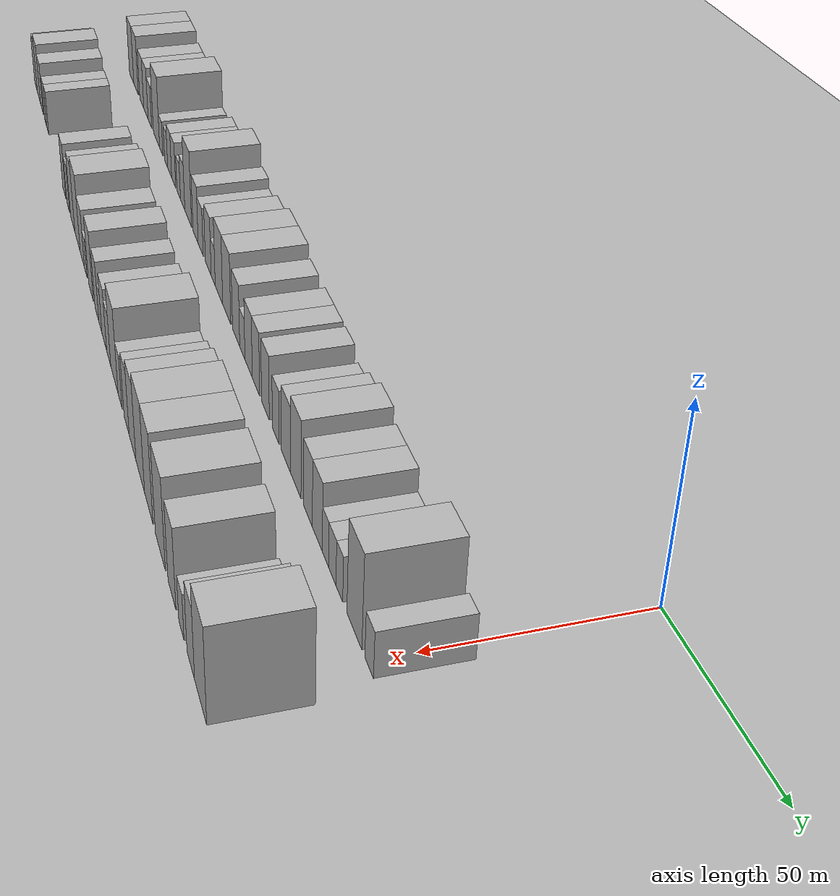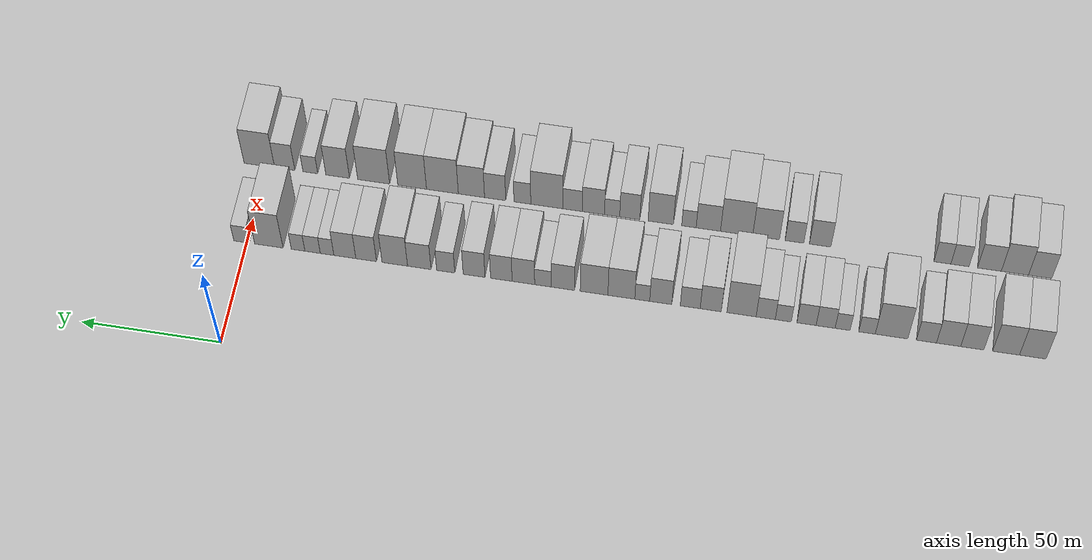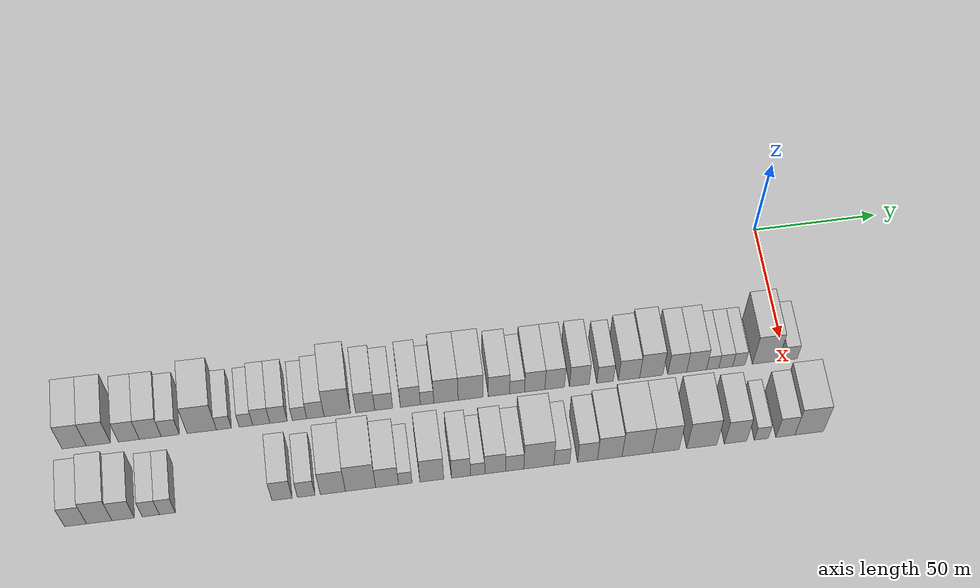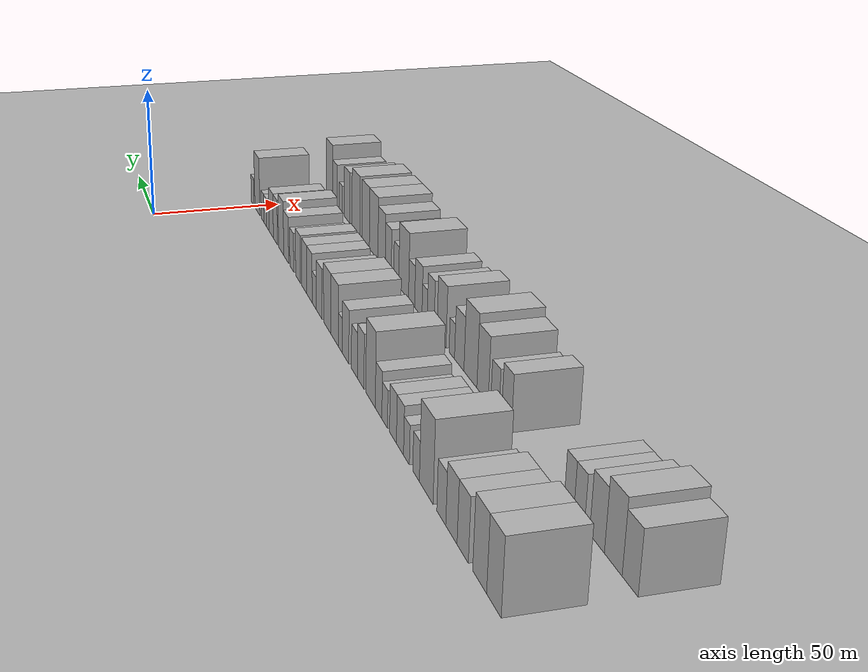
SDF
<sdf version="1.6">
 <world name="default">
  <include><name>ground_plane_1</name><uri>model://HANNAS_ground_plane</uri></include>
  <include>
   <name>ground_plane_2</name>
   <uri>model://HANNAS_ground_plane</uri>
   <pose>100 0 0  0 0 0</pose>
  </include>
  <model name="building_1">
   <static>1</static>
   <pose>50.0000 -279.3835 0 0.000000 0.000000 0.000000</pose>
   <link name="link">
    <pose>0 0 10.50 0 0 0</pose>
    <collision name="collision"><geometry><box><size>20.0000 9.2331 21.0000</size></box></geometry></collision>
    <visual name="visual">
     <cast_shadows>0</cast_shadows>
     <geometry><box><size>20.0000 9.2331 21.0000</size></box></geometry>
     <material>
      <script>
       <uri>model://HANNAS_wall/materials/scripts</uri>
       <uri>model://HANNAS_wall/materials/textures</uri>
       <name>vrc/HANNAS_wall</name>
      </script>
     </material>
    </visual>
   </link>
  </model>
  <model name="building_2">
   <static>1</static>
   <pose>50.0000 -270.1055 0 0.000000 0.000000 0.000000</pose>
   <link name="link">
    <pose>0 0 10.50 0 0 0</pose>
    <collision name="collision"><geometry><box><size>20.0000 9.3228 21.0000</size></box></geometry></collision>
    <visual name="visual">
     <cast_shadows>0</cast_shadows>
     <geometry><box><size>20.0000 9.3228 21.0000</size></box></geometry>
     <material>
      <script>
       <uri>model://HANNAS_wall/materials/scripts</uri>
       <uri>model://HANNAS_wall/materials/textures</uri>
       <name>vrc/HANNAS_wall</name>
      </script>
     </material>
    </visual>
   </link>
  </model>
  <model name="building_3">
   <static>1</static>
   <pose>50.0000 -258.4079 0 0.000000 0.000000 0.000000</pose>
   <link name="link">
    <pose>0 0 9.00 0 0 0</pose>
    <collision name="collision"><geometry><box><size>20.0000 8.0726 18.0000</size></box></geometry></collision>
    <visual name="visual">
     <cast_shadows>0</cast_shadows>
     <geometry><box><size>20.0000 8.0726 18.0000</size></box></geometry>
     <material>
      <script>
       <uri>model://HANNAS_wall/materials/scripts</uri>
       <uri>model://HANNAS_wall/materials/textures</uri>
       <name>vrc/HANNAS_wall</name>
      </script>
     </material>
    </visual>
   </link>
  </model>
  <model name="building_4">
   <static>1</static>
   <pose>50.0000 -250.1520 0 0.000000 0.000000 0.000000</pose>
   <link name="link">
    <pose>0 0 9.00 0 0 0</pose>
    <collision name="collision"><geometry><box><size>20.0000 8.4391 18.0000</size></box></geometry></collision>
    <visual name="visual">
     <cast_shadows>0</cast_shadows>
     <geometry><box><size>20.0000 8.4391 18.0000</size></box></geometry>
     <material>
      <script>
       <uri>model://HANNAS_wall/materials/scripts</uri>
       <uri>model://HANNAS_wall/materials/textures</uri>
       <name>vrc/HANNAS_wall</name>
      </script>
     </material>
    </visual>
   </link>
  </model>
  <model name="building_5">
   <static>1</static>
   <pose>50.0000 -242.4353 0 0.000000 0.000000 0.000000</pose>
   <link name="link">
    <pose>0 0 7.50 0 0 0</pose>
    <collision name="collision"><geometry><box><size>20.0000 6.9945 15.0000</size></box></geometry></collision>
    <visual name="visual">
     <cast_shadows>0</cast_shadows>
     <geometry><box><size>20.0000 6.9945 15.0000</size></box></geometry>
     <material>
      <script>
       <uri>model://HANNAS_wall/materials/scripts</uri>
       <uri>model://HANNAS_wall/materials/textures</uri>
       <name>vrc/HANNAS_wall</name>
      </script>
     </material>
    </visual>
   </link>
  </model>
  <model name="building_6">
   <static>1</static>
   <pose>50.0000 -230.2400 0 0.000000 0.000000 0.000000</pose>
   <link name="link">
    <pose>0 0 12.00 0 0 0</pose>
    <collision name="collision"><geometry><box><size>20.0000 11.3961 24.0000</size></box></geometry></collision>
    <visual name="visual">
     <cast_shadows>0</cast_shadows>
     <geometry><box><size>20.0000 11.3961 24.0000</size></box></geometry>
     <material>
      <script>
       <uri>model://HANNAS_wall/materials/scripts</uri>
       <uri>model://HANNAS_wall/materials/textures</uri>
       <name>vrc/HANNAS_wall</name>
      </script>
     </material>
    </visual>
   </link>
  </model>
  <model name="building_7">
   <static>1</static>
   <pose>50.0000 -221.6460 0 0.000000 0.000000 0.000000</pose>
   <link name="link">
    <pose>0 0 6.00 0 0 0</pose>
    <collision name="collision"><geometry><box><size>20.0000 5.7920 12.0000</size></box></geometry></collision>
    <visual name="visual">
     <cast_shadows>0</cast_shadows>
     <geometry><box><size>20.0000 5.7920 12.0000</size></box></geometry>
     <material>
      <script>
       <uri>model://HANNAS_wall/materials/scripts</uri>
       <uri>model://HANNAS_wall/materials/textures</uri>
       <name>vrc/HANNAS_wall</name>
      </script>
     </material>
    </visual>
   </link>
  </model>
  <model name="building_8">
   <static>1</static>
   <pose>50.0000 -213.1121 0 0.000000 0.000000 0.000000</pose>
   <link name="link">
    <pose>0 0 6.00 0 0 0</pose>
    <collision name="collision"><geometry><box><size>20.0000 5.2758 12.0000</size></box></geometry></collision>
    <visual name="visual">
     <cast_shadows>0</cast_shadows>
     <geometry><box><size>20.0000 5.2758 12.0000</size></box></geometry>
     <material>
      <script>
       <uri>model://HANNAS_wall/materials/scripts</uri>
       <uri>model://HANNAS_wall/materials/textures</uri>
       <name>vrc/HANNAS_wall</name>
      </script>
     </material>
    </visual>
   </link>
  </model>
  <model name="building_9">
   <static>1</static>
   <pose>50.0000 -207.1385 0 0.000000 0.000000 0.000000</pose>
   <link name="link">
    <pose>0 0 7.50 0 0 0</pose>
    <collision name="collision"><geometry><box><size>20.0000 6.6714 15.0000</size></box></geometry></collision>
    <visual name="visual">
     <cast_shadows>0</cast_shadows>
     <geometry><box><size>20.0000 6.6714 15.0000</size></box></geometry>
     <material>
      <script>
       <uri>model://HANNAS_wall/materials/scripts</uri>
       <uri>model://HANNAS_wall/materials/textures</uri>
       <name>vrc/HANNAS_wall</name>
      </script>
     </material>
    </visual>
   </link>
  </model>
  <model name="building_10">
   <static>1</static>
   <pose>50.0000 -200.4387 0 0.000000 0.000000 0.000000</pose>
   <link name="link">
    <pose>0 0 7.50 0 0 0</pose>
    <collision name="collision"><geometry><box><size>20.0000 6.7280 15.0000</size></box></geometry></collision>
    <visual name="visual">
     <cast_shadows>0</cast_shadows>
     <geometry><box><size>20.0000 6.7280 15.0000</size></box></geometry>
     <material>
      <script>
       <uri>model://HANNAS_wall/materials/scripts</uri>
       <uri>model://HANNAS_wall/materials/textures</uri>
       <name>vrc/HANNAS_wall</name>
      </script>
     </material>
    </visual>
   </link>
  </model>
  <model name="building_11">
   <static>1</static>
   <pose>50.0000 -192.2486 0 0.000000 0.000000 0.000000</pose>
   <link name="link">
    <pose>0 0 6.00 0 0 0</pose>
    <collision name="collision"><geometry><box><size>20.0000 5.6523 12.0000</size></box></geometry></collision>
    <visual name="visual">
     <cast_shadows>0</cast_shadows>
     <geometry><box><size>20.0000 5.6523 12.0000</size></box></geometry>
     <material>
      <script>
       <uri>model://HANNAS_wall/materials/scripts</uri>
       <uri>model://HANNAS_wall/materials/textures</uri>
       <name>vrc/HANNAS_wall</name>
      </script>
     </material>
    </visual>
   </link>
  </model>
  <model name="building_12">
   <static>1</static>
   <pose>50.0000 -186.0537 0 0.000000 0.000000 0.000000</pose>
   <link name="link">
    <pose>0 0 7.50 0 0 0</pose>
    <collision name="collision"><geometry><box><size>20.0000 6.7374 15.0000</size></box></geometry></collision>
    <visual name="visual">
     <cast_shadows>0</cast_shadows>
     <geometry><box><size>20.0000 6.7374 15.0000</size></box></geometry>
     <material>
      <script>
       <uri>model://HANNAS_wall/materials/scripts</uri>
       <uri>model://HANNAS_wall/materials/textures</uri>
       <name>vrc/HANNAS_wall</name>
      </script>
     </material>
    </visual>
   </link>
  </model>
  <model name="building_13">
   <static>1</static>
   <pose>50.0000 -177.5244 0 0.000000 0.000000 0.000000</pose>
   <link name="link">
    <pose>0 0 12.00 0 0 0</pose>
    <collision name="collision"><geometry><box><size>20.0000 10.3212 24.0000</size></box></geometry></collision>
    <visual name="visual">
     <cast_shadows>0</cast_shadows>
     <geometry><box><size>20.0000 10.3212 24.0000</size></box></geometry>
     <material>
      <script>
       <uri>model://HANNAS_wall/materials/scripts</uri>
       <uri>model://HANNAS_wall/materials/textures</uri>
       <name>vrc/HANNAS_wall</name>
      </script>
     </material>
    </visual>
   </link>
  </model>
  <model name="building_14">
   <static>1</static>
   <pose>50.0000 -166.6423 0 0.000000 0.000000 0.000000</pose>
   <link name="link">
    <pose>0 0 9.00 0 0 0</pose>
    <collision name="collision"><geometry><box><size>20.0000 7.4430 18.0000</size></box></geometry></collision>
    <visual name="visual">
     <cast_shadows>0</cast_shadows>
     <geometry><box><size>20.0000 7.4430 18.0000</size></box></geometry>
     <material>
      <script>
       <uri>model://HANNAS_wall/materials/scripts</uri>
       <uri>model://HANNAS_wall/materials/textures</uri>
       <name>vrc/HANNAS_wall</name>
      </script>
     </material>
    </visual>
   </link>
  </model>
  <model name="building_15">
   <static>1</static>
   <pose>50.0000 -159.3903 0 0.000000 0.000000 0.000000</pose>
   <link name="link">
    <pose>0 0 7.50 0 0 0</pose>
    <collision name="collision"><geometry><box><size>20.0000 7.0609 15.0000</size></box></geometry></collision>
    <visual name="visual">
     <cast_shadows>0</cast_shadows>
     <geometry><box><size>20.0000 7.0609 15.0000</size></box></geometry>
     <material>
      <script>
       <uri>model://HANNAS_wall/materials/scripts</uri>
       <uri>model://HANNAS_wall/materials/textures</uri>
       <name>vrc/HANNAS_wall</name>
      </script>
     </material>
    </visual>
   </link>
  </model>
  <model name="building_16">
   <static>1</static>
   <pose>50.0000 -148.9414 0 0.000000 0.000000 0.000000</pose>
   <link name="link">
    <pose>0 0 9.00 0 0 0</pose>
    <collision name="collision"><geometry><box><size>20.0000 7.8368 18.0000</size></box></geometry></collision>
    <visual name="visual">
     <cast_shadows>0</cast_shadows>
     <geometry><box><size>20.0000 7.8368 18.0000</size></box></geometry>
     <material>
      <script>
       <uri>model://HANNAS_wall/materials/scripts</uri>
       <uri>model://HANNAS_wall/materials/textures</uri>
       <name>vrc/HANNAS_wall</name>
      </script>
     </material>
    </visual>
   </link>
  </model>
  <model name="building_17">
   <static>1</static>
   <pose>50.0000 -142.3813 0 0.000000 0.000000 0.000000</pose>
   <link name="link">
    <pose>0 0 6.00 0 0 0</pose>
    <collision name="collision"><geometry><box><size>20.0000 5.2835 12.0000</size></box></geometry></collision>
    <visual name="visual">
     <cast_shadows>0</cast_shadows>
     <geometry><box><size>20.0000 5.2835 12.0000</size></box></geometry>
     <material>
      <script>
       <uri>model://HANNAS_wall/materials/scripts</uri>
       <uri>model://HANNAS_wall/materials/textures</uri>
       <name>vrc/HANNAS_wall</name>
      </script>
     </material>
    </visual>
   </link>
  </model>
  <model name="building_18">
   <static>1</static>
   <pose>50.0000 -134.9490 0 0.000000 0.000000 0.000000</pose>
   <link name="link">
    <pose>0 0 10.50 0 0 0</pose>
    <collision name="collision"><geometry><box><size>20.0000 9.5811 21.0000</size></box></geometry></collision>
    <visual name="visual">
     <cast_shadows>0</cast_shadows>
     <geometry><box><size>20.0000 9.5811 21.0000</size></box></geometry>
     <material>
      <script>
       <uri>model://HANNAS_wall/materials/scripts</uri>
       <uri>model://HANNAS_wall/materials/textures</uri>
       <name>vrc/HANNAS_wall</name>
      </script>
     </material>
    </visual>
   </link>
  </model>
  <model name="building_19">
   <static>1</static>
   <pose>50.0000 -125.2117 0 0.000000 0.000000 0.000000</pose>
   <link name="link">
    <pose>0 0 10.50 0 0 0</pose>
    <collision name="collision"><geometry><box><size>20.0000 9.8934 21.0000</size></box></geometry></collision>
    <visual name="visual">
     <cast_shadows>0</cast_shadows>
     <geometry><box><size>20.0000 9.8934 21.0000</size></box></geometry>
     <material>
      <script>
       <uri>model://HANNAS_wall/materials/scripts</uri>
       <uri>model://HANNAS_wall/materials/textures</uri>
       <name>vrc/HANNAS_wall</name>
      </script>
     </material>
    </visual>
   </link>
  </model>
  <model name="building_20">
   <static>1</static>
   <pose>50.0000 -114.0749 0 0.000000 0.000000 0.000000</pose>
   <link name="link">
    <pose>0 0 9.00 0 0 0</pose>
    <collision name="collision"><geometry><box><size>20.0000 8.3802 18.0000</size></box></geometry></collision>
    <visual name="visual">
     <cast_shadows>0</cast_shadows>
     <geometry><box><size>20.0000 8.3802 18.0000</size></box></geometry>
     <material>
      <script>
       <uri>model://HANNAS_wall/materials/scripts</uri>
       <uri>model://HANNAS_wall/materials/textures</uri>
       <name>vrc/HANNAS_wall</name>
      </script>
     </material>
    </visual>
   </link>
  </model>
  <model name="building_21">
   <static>1</static>
   <pose>50.0000 -106.9440 0 0.000000 0.000000 0.000000</pose>
   <link name="link">
    <pose>0 0 6.00 0 0 0</pose>
    <collision name="collision"><geometry><box><size>20.0000 5.8816 12.0000</size></box></geometry></collision>
    <visual name="visual">
     <cast_shadows>0</cast_shadows>
     <geometry><box><size>20.0000 5.8816 12.0000</size></box></geometry>
     <material>
      <script>
       <uri>model://HANNAS_wall/materials/scripts</uri>
       <uri>model://HANNAS_wall/materials/textures</uri>
       <name>vrc/HANNAS_wall</name>
      </script>
     </material>
    </visual>
   </link>
  </model>
  <model name="building_22">
   <static>1</static>
   <pose>50.0000 -99.9603 0 0.000000 0.000000 0.000000</pose>
   <link name="link">
    <pose>0 0 9.00 0 0 0</pose>
    <collision name="collision"><geometry><box><size>20.0000 8.0857 18.0000</size></box></geometry></collision>
    <visual name="visual">
     <cast_shadows>0</cast_shadows>
     <geometry><box><size>20.0000 8.0857 18.0000</size></box></geometry>
     <material>
      <script>
       <uri>model://HANNAS_wall/materials/scripts</uri>
       <uri>model://HANNAS_wall/materials/textures</uri>
       <name>vrc/HANNAS_wall</name>
      </script>
     </material>
    </visual>
   </link>
  </model>
  <model name="building_23">
   <static>1</static>
   <pose>50.0000 -92.0587 0 0.000000 0.000000 0.000000</pose>
   <link name="link">
    <pose>0 0 9.00 0 0 0</pose>
    <collision name="collision"><geometry><box><size>20.0000 7.7175 18.0000</size></box></geometry></collision>
    <visual name="visual">
     <cast_shadows>0</cast_shadows>
     <geometry><box><size>20.0000 7.7175 18.0000</size></box></geometry>
     <material>
      <script>
       <uri>model://HANNAS_wall/materials/scripts</uri>
       <uri>model://HANNAS_wall/materials/textures</uri>
       <name>vrc/HANNAS_wall</name>
      </script>
     </material>
    </visual>
   </link>
  </model>
  <model name="building_24">
   <static>1</static>
   <pose>50.0000 -82.2787 0 0.000000 0.000000 0.000000</pose>
   <link name="link">
    <pose>0 0 9.00 0 0 0</pose>
    <collision name="collision"><geometry><box><size>20.0000 7.8427 18.0000</size></box></geometry></collision>
    <visual name="visual">
     <cast_shadows>0</cast_shadows>
     <geometry><box><size>20.0000 7.8427 18.0000</size></box></geometry>
     <material>
      <script>
       <uri>model://HANNAS_wall/materials/scripts</uri>
       <uri>model://HANNAS_wall/materials/textures</uri>
       <name>vrc/HANNAS_wall</name>
      </script>
     </material>
    </visual>
   </link>
  </model>
  <model name="building_25">
   <static>1</static>
   <pose>50.0000 -72.0794 0 0.000000 0.000000 0.000000</pose>
   <link name="link">
    <pose>0 0 7.50 0 0 0</pose>
    <collision name="collision"><geometry><box><size>20.0000 6.5558 15.0000</size></box></geometry></collision>
    <visual name="visual">
     <cast_shadows>0</cast_shadows>
     <geometry><box><size>20.0000 6.5558 15.0000</size></box></geometry>
     <material>
      <script>
       <uri>model://HANNAS_wall/materials/scripts</uri>
       <uri>model://HANNAS_wall/materials/textures</uri>
       <name>vrc/HANNAS_wall</name>
      </script>
     </material>
    </visual>
   </link>
  </model>
  <model name="building_26">
   <static>1</static>
   <pose>50.0000 -62.5581 0 0.000000 0.000000 0.000000</pose>
   <link name="link">
    <pose>0 0 9.00 0 0 0</pose>
    <collision name="collision"><geometry><box><size>20.0000 8.4868 18.0000</size></box></geometry></collision>
    <visual name="visual">
     <cast_shadows>0</cast_shadows>
     <geometry><box><size>20.0000 8.4868 18.0000</size></box></geometry>
     <material>
      <script>
       <uri>model://HANNAS_wall/materials/scripts</uri>
       <uri>model://HANNAS_wall/materials/textures</uri>
       <name>vrc/HANNAS_wall</name>
      </script>
     </material>
    </visual>
   </link>
  </model>
  <model name="building_27">
   <static>1</static>
   <pose>50.0000 -53.7057 0 0.000000 0.000000 0.000000</pose>
   <link name="link">
    <pose>0 0 10.50 0 0 0</pose>
    <collision name="collision"><geometry><box><size>20.0000 9.2180 21.0000</size></box></geometry></collision>
    <visual name="visual">
     <cast_shadows>0</cast_shadows>
     <geometry><box><size>20.0000 9.2180 21.0000</size></box></geometry>
     <material>
      <script>
       <uri>model://HANNAS_wall/materials/scripts</uri>
       <uri>model://HANNAS_wall/materials/textures</uri>
       <name>vrc/HANNAS_wall</name>
      </script>
     </material>
    </visual>
   </link>
  </model>
  <model name="building_28">
   <static>1</static>
   <pose>50.0000 -43.3531 0 0.000000 0.000000 0.000000</pose>
   <link name="link">
    <pose>0 0 9.00 0 0 0</pose>
    <collision name="collision"><geometry><box><size>20.0000 7.4873 18.0000</size></box></geometry></collision>
    <visual name="visual">
     <cast_shadows>0</cast_shadows>
     <geometry><box><size>20.0000 7.4873 18.0000</size></box></geometry>
     <material>
      <script>
       <uri>model://HANNAS_wall/materials/scripts</uri>
       <uri>model://HANNAS_wall/materials/textures</uri>
       <name>vrc/HANNAS_wall</name>
      </script>
     </material>
    </visual>
   </link>
  </model>
  <model name="building_29">
   <static>1</static>
   <pose>50.0000 -35.6290 0 0.000000 0.000000 0.000000</pose>
   <link name="link">
    <pose>0 0 9.00 0 0 0</pose>
    <collision name="collision"><geometry><box><size>20.0000 7.9609 18.0000</size></box></geometry></collision>
    <visual name="visual">
     <cast_shadows>0</cast_shadows>
     <geometry><box><size>20.0000 7.9609 18.0000</size></box></geometry>
     <material>
      <script>
       <uri>model://HANNAS_wall/materials/scripts</uri>
       <uri>model://HANNAS_wall/materials/textures</uri>
       <name>vrc/HANNAS_wall</name>
      </script>
     </material>
    </visual>
   </link>
  </model>
  <model name="building_30">
   <static>1</static>
   <pose>50.0000 -29.1863 0 0.000000 0.000000 0.000000</pose>
   <link name="link">
    <pose>0 0 6.00 0 0 0</pose>
    <collision name="collision"><geometry><box><size>20.0000 4.9245 12.0000</size></box></geometry></collision>
    <visual name="visual">
     <cast_shadows>0</cast_shadows>
     <geometry><box><size>20.0000 4.9245 12.0000</size></box></geometry>
     <material>
      <script>
       <uri>model://HANNAS_wall/materials/scripts</uri>
       <uri>model://HANNAS_wall/materials/textures</uri>
       <name>vrc/HANNAS_wall</name>
      </script>
     </material>
    </visual>
   </link>
  </model>
  <model name="building_31">
   <static>1</static>
   <pose>50.0000 -23.9347 0 0.000000 0.000000 0.000000</pose>
   <link name="link">
    <pose>0 0 6.00 0 0 0</pose>
    <collision name="collision"><geometry><box><size>20.0000 5.5786 12.0000</size></box></geometry></collision>
    <visual name="visual">
     <cast_shadows>0</cast_shadows>
     <geometry><box><size>20.0000 5.5786 12.0000</size></box></geometry>
     <material>
      <script>
       <uri>model://HANNAS_wall/materials/scripts</uri>
       <uri>model://HANNAS_wall/materials/textures</uri>
       <name>vrc/HANNAS_wall</name>
      </script>
     </material>
    </visual>
   </link>
  </model>
  <model name="building_32">
   <static>1</static>
   <pose>50.0000 -18.6624 0 0.000000 0.000000 0.000000</pose>
   <link name="link">
    <pose>0 0 6.00 0 0 0</pose>
    <collision name="collision"><geometry><box><size>20.0000 4.9661 12.0000</size></box></geometry></collision>
    <visual name="visual">
     <cast_shadows>0</cast_shadows>
     <geometry><box><size>20.0000 4.9661 12.0000</size></box></geometry>
     <material>
      <script>
       <uri>model://HANNAS_wall/materials/scripts</uri>
       <uri>model://HANNAS_wall/materials/textures</uri>
       <name>vrc/HANNAS_wall</name>
      </script>
     </material>
    </visual>
   </link>
  </model>
  <model name="building_33">
   <static>1</static>
   <pose>50.0000 -8.0052 0 0.000000 0.000000 0.000000</pose>
   <link name="link">
    <pose>0 0 12.00 0 0 0</pose>
    <collision name="collision"><geometry><box><size>20.0000 10.3484 24.0000</size></box></geometry></collision>
    <visual name="visual">
     <cast_shadows>0</cast_shadows>
     <geometry><box><size>20.0000 10.3484 24.0000</size></box></geometry>
     <material>
      <script>
       <uri>model://HANNAS_wall/materials/scripts</uri>
       <uri>model://HANNAS_wall/materials/textures</uri>
       <name>vrc/HANNAS_wall</name>
      </script>
     </material>
    </visual>
   </link>
  </model>
  <model name="building_34">
   <static>1</static>
   <pose>50.0000 1.9745 0 0.000000 0.000000 0.000000</pose>
   <link name="link">
    <pose>0 0 6.00 0 0 0</pose>
    <collision name="collision"><geometry><box><size>20.0000 5.6110 12.0000</size></box></geometry></collision>
    <visual name="visual">
     <cast_shadows>0</cast_shadows>
     <geometry><box><size>20.0000 5.6110 12.0000</size></box></geometry>
     <material>
      <script>
       <uri>model://HANNAS_wall/materials/scripts</uri>
       <uri>model://HANNAS_wall/materials/textures</uri>
       <name>vrc/HANNAS_wall</name>
      </script>
     </material>
    </visual>
   </link>
  </model>
  <model name="building_67">
   <static>1</static>
   <pose>82.0000 -279.8822 0 0.000000 0.000000 0.000000</pose>
   <link name="link">
    <pose>0 0 9.00 0 0 0</pose>
    <collision name="collision"><geometry><box><size>20.0000 8.2355 18.0000</size></box></geometry></collision>
    <visual name="visual">
     <cast_shadows>0</cast_shadows>
     <geometry><box><size>20.0000 8.2355 18.0000</size></box></geometry>
     <material>
      <script>
       <uri>model://HANNAS_wall/materials/scripts</uri>
       <uri>model://HANNAS_wall/materials/textures</uri>
       <name>vrc/HANNAS_wall</name>
      </script>
     </material>
    </visual>
   </link>
  </model>
  <model name="building_68">
   <static>1</static>
   <pose>82.0000 -270.9641 0 0.000000 0.000000 0.000000</pose>
   <link name="link">
    <pose>0 0 10.50 0 0 0</pose>
    <collision name="collision"><geometry><box><size>20.0000 9.6007 21.0000</size></box></geometry></collision>
    <visual name="visual">
     <cast_shadows>0</cast_shadows>
     <geometry><box><size>20.0000 9.6007 21.0000</size></box></geometry>
     <material>
      <script>
       <uri>model://HANNAS_wall/materials/scripts</uri>
       <uri>model://HANNAS_wall/materials/textures</uri>
       <name>vrc/HANNAS_wall</name>
      </script>
     </material>
    </visual>
   </link>
  </model>
  <model name="building_69">
   <static>1</static>
   <pose>82.0000 -261.9529 0 0.000000 0.000000 0.000000</pose>
   <link name="link">
    <pose>0 0 9.00 0 0 0</pose>
    <collision name="collision"><geometry><box><size>20.0000 8.4218 18.0000</size></box></geometry></collision>
    <visual name="visual">
     <cast_shadows>0</cast_shadows>
     <geometry><box><size>20.0000 8.4218 18.0000</size></box></geometry>
     <material>
      <script>
       <uri>model://HANNAS_wall/materials/scripts</uri>
       <uri>model://HANNAS_wall/materials/textures</uri>
       <name>vrc/HANNAS_wall</name>
      </script>
     </material>
    </visual>
   </link>
  </model>
  <model name="building_70">
   <static>1</static>
   <pose>82.0000 -251.5233 0 0.000000 0.000000 0.000000</pose>
   <link name="link">
    <pose>0 0 7.50 0 0 0</pose>
    <collision name="collision"><geometry><box><size>20.0000 6.4374 15.0000</size></box></geometry></collision>
    <visual name="visual">
     <cast_shadows>0</cast_shadows>
     <geometry><box><size>20.0000 6.4374 15.0000</size></box></geometry>
     <material>
      <script>
       <uri>model://HANNAS_wall/materials/scripts</uri>
       <uri>model://HANNAS_wall/materials/textures</uri>
       <name>vrc/HANNAS_wall</name>
      </script>
     </material>
    </visual>
   </link>
  </model>
  <model name="building_71">
   <static>1</static>
   <pose>82.0000 -245.2903 0 0.000000 0.000000 0.000000</pose>
   <link name="link">
    <pose>0 0 7.50 0 0 0</pose>
    <collision name="collision"><geometry><box><size>20.0000 6.0286 15.0000</size></box></geometry></collision>
    <visual name="visual">
     <cast_shadows>0</cast_shadows>
     <geometry><box><size>20.0000 6.0286 15.0000</size></box></geometry>
     <material>
      <script>
       <uri>model://HANNAS_wall/materials/scripts</uri>
       <uri>model://HANNAS_wall/materials/textures</uri>
       <name>vrc/HANNAS_wall</name>
      </script>
     </material>
    </visual>
   </link>
  </model>
  <model name="building_72">
   <static>1</static>
   <pose>82.0000 -201.7210 0 0.000000 0.000000 0.000000</pose>
   <link name="link">
    <pose>0 0 9.00 0 0 0</pose>
    <collision name="collision"><geometry><box><size>20.0000 7.7033 18.0000</size></box></geometry></collision>
    <visual name="visual">
     <cast_shadows>0</cast_shadows>
     <geometry><box><size>20.0000 7.7033 18.0000</size></box></geometry>
     <material>
      <script>
       <uri>model://HANNAS_wall/materials/scripts</uri>
       <uri>model://HANNAS_wall/materials/textures</uri>
       <name>vrc/HANNAS_wall</name>
      </script>
     </material>
    </visual>
   </link>
  </model>
  <model name="building_73">
   <static>1</static>
   <pose>82.0000 -192.5080 0 0.000000 0.000000 0.000000</pose>
   <link name="link">
    <pose>0 0 7.50 0 0 0</pose>
    <collision name="collision"><geometry><box><size>20.0000 6.7227 15.0000</size></box></geometry></collision>
    <visual name="visual">
     <cast_shadows>0</cast_shadows>
     <geometry><box><size>20.0000 6.7227 15.0000</size></box></geometry>
     <material>
      <script>
       <uri>model://HANNAS_wall/materials/scripts</uri>
       <uri>model://HANNAS_wall/materials/textures</uri>
       <name>vrc/HANNAS_wall</name>
      </script>
     </material>
    </visual>
   </link>
  </model>
  <model name="building_74">
   <static>1</static>
   <pose>82.0000 -182.3361 0 0.000000 0.000000 0.000000</pose>
   <link name="link">
    <pose>0 0 10.50 0 0 0</pose>
    <collision name="collision"><geometry><box><size>20.0000 9.6213 21.0000</size></box></geometry></collision>
    <visual name="visual">
     <cast_shadows>0</cast_shadows>
     <geometry><box><size>20.0000 9.6213 21.0000</size></box></geometry>
     <material>
      <script>
       <uri>model://HANNAS_wall/materials/scripts</uri>
       <uri>model://HANNAS_wall/materials/textures</uri>
       <name>vrc/HANNAS_wall</name>
      </script>
     </material>
    </visual>
   </link>
  </model>
  <model name="building_75">
   <static>1</static>
   <pose>82.0000 -171.7310 0 0.000000 0.000000 0.000000</pose>
   <link name="link">
    <pose>0 0 12.00 0 0 0</pose>
    <collision name="collision"><geometry><box><size>20.0000 11.5889 24.0000</size></box></geometry></collision>
    <visual name="visual">
     <cast_shadows>0</cast_shadows>
     <geometry><box><size>20.0000 11.5889 24.0000</size></box></geometry>
     <material>
      <script>
       <uri>model://HANNAS_wall/materials/scripts</uri>
       <uri>model://HANNAS_wall/materials/textures</uri>
       <name>vrc/HANNAS_wall</name>
      </script>
     </material>
    </visual>
   </link>
  </model>
  <model name="building_76">
   <static>1</static>
   <pose>82.0000 -161.5429 0 0.000000 0.000000 0.000000</pose>
   <link name="link">
    <pose>0 0 9.00 0 0 0</pose>
    <collision name="collision"><geometry><box><size>20.0000 8.7873 18.0000</size></box></geometry></collision>
    <visual name="visual">
     <cast_shadows>0</cast_shadows>
     <geometry><box><size>20.0000 8.7873 18.0000</size></box></geometry>
     <material>
      <script>
       <uri>model://HANNAS_wall/materials/scripts</uri>
       <uri>model://HANNAS_wall/materials/textures</uri>
       <name>vrc/HANNAS_wall</name>
      </script>
     </material>
    </visual>
   </link>
  </model>
  <model name="building_77">
   <static>1</static>
   <pose>82.0000 -154.5434 0 0.000000 0.000000 0.000000</pose>
   <link name="link">
    <pose>0 0 6.00 0 0 0</pose>
    <collision name="collision"><geometry><box><size>20.0000 5.2117 12.0000</size></box></geometry></collision>
    <visual name="visual">
     <cast_shadows>0</cast_shadows>
     <geometry><box><size>20.0000 5.2117 12.0000</size></box></geometry>
     <material>
      <script>
       <uri>model://HANNAS_wall/materials/scripts</uri>
       <uri>model://HANNAS_wall/materials/textures</uri>
       <name>vrc/HANNAS_wall</name>
      </script>
     </material>
    </visual>
   </link>
  </model>
  <model name="building_78">
   <static>1</static>
   <pose>82.0000 -144.3699 0 0.000000 0.000000 0.000000</pose>
   <link name="link">
    <pose>0 0 10.50 0 0 0</pose>
    <collision name="collision"><geometry><box><size>20.0000 9.1352 21.0000</size></box></geometry></collision>
    <visual name="visual">
     <cast_shadows>0</cast_shadows>
     <geometry><box><size>20.0000 9.1352 21.0000</size></box></geometry>
     <material>
      <script>
       <uri>model://HANNAS_wall/materials/scripts</uri>
       <uri>model://HANNAS_wall/materials/textures</uri>
       <name>vrc/HANNAS_wall</name>
      </script>
     </material>
    </visual>
   </link>
  </model>
  <model name="building_79">
   <static>1</static>
   <pose>82.0000 -133.1547 0 0.000000 0.000000 0.000000</pose>
   <link name="link">
    <pose>0 0 9.00 0 0 0</pose>
    <collision name="collision"><geometry><box><size>20.0000 7.2952 18.0000</size></box></geometry></collision>
    <visual name="visual">
     <cast_shadows>0</cast_shadows>
     <geometry><box><size>20.0000 7.2952 18.0000</size></box></geometry>
     <material>
      <script>
       <uri>model://HANNAS_wall/materials/scripts</uri>
       <uri>model://HANNAS_wall/materials/textures</uri>
       <name>vrc/HANNAS_wall</name>
      </script>
     </material>
    </visual>
   </link>
  </model>
  <model name="building_80">
   <static>1</static>
   <pose>82.0000 -126.7506 0 0.000000 0.000000 0.000000</pose>
   <link name="link">
    <pose>0 0 6.00 0 0 0</pose>
    <collision name="collision"><geometry><box><size>20.0000 5.5130 12.0000</size></box></geometry></collision>
    <visual name="visual">
     <cast_shadows>0</cast_shadows>
     <geometry><box><size>20.0000 5.5130 12.0000</size></box></geometry>
     <material>
      <script>
       <uri>model://HANNAS_wall/materials/scripts</uri>
       <uri>model://HANNAS_wall/materials/textures</uri>
       <name>vrc/HANNAS_wall</name>
      </script>
     </material>
    </visual>
   </link>
  </model>
  <model name="building_81">
   <static>1</static>
   <pose>82.0000 -119.9399 0 0.000000 0.000000 0.000000</pose>
   <link name="link">
    <pose>0 0 9.00 0 0 0</pose>
    <collision name="collision"><geometry><box><size>20.0000 8.1084 18.0000</size></box></geometry></collision>
    <visual name="visual">
     <cast_shadows>0</cast_shadows>
     <geometry><box><size>20.0000 8.1084 18.0000</size></box></geometry>
     <material>
      <script>
       <uri>model://HANNAS_wall/materials/scripts</uri>
       <uri>model://HANNAS_wall/materials/textures</uri>
       <name>vrc/HANNAS_wall</name>
      </script>
     </material>
    </visual>
   </link>
  </model>
  <model name="building_82">
   <static>1</static>
   <pose>82.0000 -112.3804 0 0.000000 0.000000 0.000000</pose>
   <link name="link">
    <pose>0 0 7.50 0 0 0</pose>
    <collision name="collision"><geometry><box><size>20.0000 7.0106 15.0000</size></box></geometry></collision>
    <visual name="visual">
     <cast_shadows>0</cast_shadows>
     <geometry><box><size>20.0000 7.0106 15.0000</size></box></geometry>
     <material>
      <script>
       <uri>model://HANNAS_wall/materials/scripts</uri>
       <uri>model://HANNAS_wall/materials/textures</uri>
       <name>vrc/HANNAS_wall</name>
      </script>
     </material>
    </visual>
   </link>
  </model>
  <model name="building_83">
   <static>1</static>
   <pose>82.0000 -103.0256 0 0.000000 0.000000 0.000000</pose>
   <link name="link">
    <pose>0 0 12.00 0 0 0</pose>
    <collision name="collision"><geometry><box><size>20.0000 11.6991 24.0000</size></box></geometry></collision>
    <visual name="visual">
     <cast_shadows>0</cast_shadows>
     <geometry><box><size>20.0000 11.6991 24.0000</size></box></geometry>
     <material>
      <script>
       <uri>model://HANNAS_wall/materials/scripts</uri>
       <uri>model://HANNAS_wall/materials/textures</uri>
       <name>vrc/HANNAS_wall</name>
      </script>
     </material>
    </visual>
   </link>
  </model>
  <model name="building_84">
   <static>1</static>
   <pose>82.0000 -94.0986 0 0.000000 0.000000 0.000000</pose>
   <link name="link">
    <pose>0 0 7.50 0 0 0</pose>
    <collision name="collision"><geometry><box><size>20.0000 6.1549 15.0000</size></box></geometry></collision>
    <visual name="visual">
     <cast_shadows>0</cast_shadows>
     <geometry><box><size>20.0000 6.1549 15.0000</size></box></geometry>
     <material>
      <script>
       <uri>model://HANNAS_wall/materials/scripts</uri>
       <uri>model://HANNAS_wall/materials/textures</uri>
       <name>vrc/HANNAS_wall</name>
      </script>
     </material>
    </visual>
   </link>
  </model>
  <model name="building_85">
   <static>1</static>
   <pose>82.0000 -84.1501 0 0.000000 0.000000 0.000000</pose>
   <link name="link">
    <pose>0 0 9.00 0 0 0</pose>
    <collision name="collision"><geometry><box><size>20.0000 7.7421 18.0000</size></box></geometry></collision>
    <visual name="visual">
     <cast_shadows>0</cast_shadows>
     <geometry><box><size>20.0000 7.7421 18.0000</size></box></geometry>
     <material>
      <script>
       <uri>model://HANNAS_wall/materials/scripts</uri>
       <uri>model://HANNAS_wall/materials/textures</uri>
       <name>vrc/HANNAS_wall</name>
      </script>
     </material>
    </visual>
   </link>
  </model>
  <model name="building_86">
   <static>1</static>
   <pose>82.0000 -75.4805 0 0.000000 0.000000 0.000000</pose>
   <link name="link">
    <pose>0 0 10.50 0 0 0</pose>
    <collision name="collision"><geometry><box><size>20.0000 9.5971 21.0000</size></box></geometry></collision>
    <visual name="visual">
     <cast_shadows>0</cast_shadows>
     <geometry><box><size>20.0000 9.5971 21.0000</size></box></geometry>
     <material>
      <script>
       <uri>model://HANNAS_wall/materials/scripts</uri>
       <uri>model://HANNAS_wall/materials/textures</uri>
       <name>vrc/HANNAS_wall</name>
      </script>
     </material>
    </visual>
   </link>
  </model>
  <model name="building_87">
   <static>1</static>
   <pose>82.0000 -64.8374 0 0.000000 0.000000 0.000000</pose>
   <link name="link">
    <pose>0 0 12.00 0 0 0</pose>
    <collision name="collision"><geometry><box><size>20.0000 11.6890 24.0000</size></box></geometry></collision>
    <visual name="visual">
     <cast_shadows>0</cast_shadows>
     <geometry><box><size>20.0000 11.6890 24.0000</size></box></geometry>
     <material>
      <script>
       <uri>model://HANNAS_wall/materials/scripts</uri>
       <uri>model://HANNAS_wall/materials/textures</uri>
       <name>vrc/HANNAS_wall</name>
      </script>
     </material>
    </visual>
   </link>
  </model>
  <model name="building_88">
   <static>1</static>
   <pose>82.0000 -53.7131 0 0.000000 0.000000 0.000000</pose>
   <link name="link">
    <pose>0 0 12.00 0 0 0</pose>
    <collision name="collision"><geometry><box><size>20.0000 10.5598 24.0000</size></box></geometry></collision>
    <visual name="visual">
     <cast_shadows>0</cast_shadows>
     <geometry><box><size>20.0000 10.5598 24.0000</size></box></geometry>
     <material>
      <script>
       <uri>model://HANNAS_wall/materials/scripts</uri>
       <uri>model://HANNAS_wall/materials/textures</uri>
       <name>vrc/HANNAS_wall</name>
      </script>
     </material>
    </visual>
   </link>
  </model>
  <model name="building_89">
   <static>1</static>
   <pose>82.0000 -39.5381 0 0.000000 0.000000 0.000000</pose>
   <link name="link">
    <pose>0 0 12.00 0 0 0</pose>
    <collision name="collision"><geometry><box><size>20.0000 11.7902 24.0000</size></box></geometry></collision>
    <visual name="visual">
     <cast_shadows>0</cast_shadows>
     <geometry><box><size>20.0000 11.7902 24.0000</size></box></geometry>
     <material>
      <script>
       <uri>model://HANNAS_wall/materials/scripts</uri>
       <uri>model://HANNAS_wall/materials/textures</uri>
       <name>vrc/HANNAS_wall</name>
      </script>
     </material>
    </visual>
   </link>
  </model>
  <model name="building_90">
   <static>1</static>
   <pose>82.0000 -26.2651 0 0.000000 0.000000 0.000000</pose>
   <link name="link">
    <pose>0 0 10.50 0 0 0</pose>
    <collision name="collision"><geometry><box><size>20.0000 8.7557 21.0000</size></box></geometry></collision>
    <visual name="visual">
     <cast_shadows>0</cast_shadows>
     <geometry><box><size>20.0000 8.7557 21.0000</size></box></geometry>
     <material>
      <script>
       <uri>model://HANNAS_wall/materials/scripts</uri>
       <uri>model://HANNAS_wall/materials/textures</uri>
       <name>vrc/HANNAS_wall</name>
      </script>
     </material>
    </visual>
   </link>
  </model>
  <model name="building_91">
   <static>1</static>
   <pose>82.0000 -16.1471 0 0.000000 0.000000 0.000000</pose>
   <link name="link">
    <pose>0 0 6.00 0 0 0</pose>
    <collision name="collision"><geometry><box><size>20.0000 5.4804 12.0000</size></box></geometry></collision>
    <visual name="visual">
     <cast_shadows>0</cast_shadows>
     <geometry><box><size>20.0000 5.4804 12.0000</size></box></geometry>
     <material>
      <script>
       <uri>model://HANNAS_wall/materials/scripts</uri>
       <uri>model://HANNAS_wall/materials/textures</uri>
       <name>vrc/HANNAS_wall</name>
      </script>
     </material>
    </visual>
   </link>
  </model>
  <model name="building_92">
   <static>1</static>
   <pose>82.0000 -6.6568 0 0.000000 0.000000 0.000000</pose>
   <link name="link">
    <pose>0 0 9.00 0 0 0</pose>
    <collision name="collision"><geometry><box><size>20.0000 7.5002 18.0000</size></box></geometry></collision>
    <visual name="visual">
     <cast_shadows>0</cast_shadows>
     <geometry><box><size>20.0000 7.5002 18.0000</size></box></geometry>
     <material>
      <script>
       <uri>model://HANNAS_wall/materials/scripts</uri>
       <uri>model://HANNAS_wall/materials/textures</uri>
       <name>vrc/HANNAS_wall</name>
      </script>
     </material>
    </visual>
   </link>
  </model>
  <model name="building_93">
   <static>1</static>
   <pose>82.0000 2.7596 0 0.000000 0.000000 0.000000</pose>
   <link name="link">
    <pose>0 0 12.00 0 0 0</pose>
    <collision name="collision"><geometry><box><size>20.0000 11.3326 24.0000</size></box></geometry></collision>
    <visual name="visual">
     <cast_shadows>0</cast_shadows>
     <geometry><box><size>20.0000 11.3326 24.0000</size></box></geometry>
     <material>
      <script>
       <uri>model://HANNAS_wall/materials/scripts</uri>
       <uri>model://HANNAS_wall/materials/textures</uri>
       <name>vrc/HANNAS_wall</name>
      </script>
     </material>
    </visual>
   </link>
  </model>
 </world>
</sdf>
